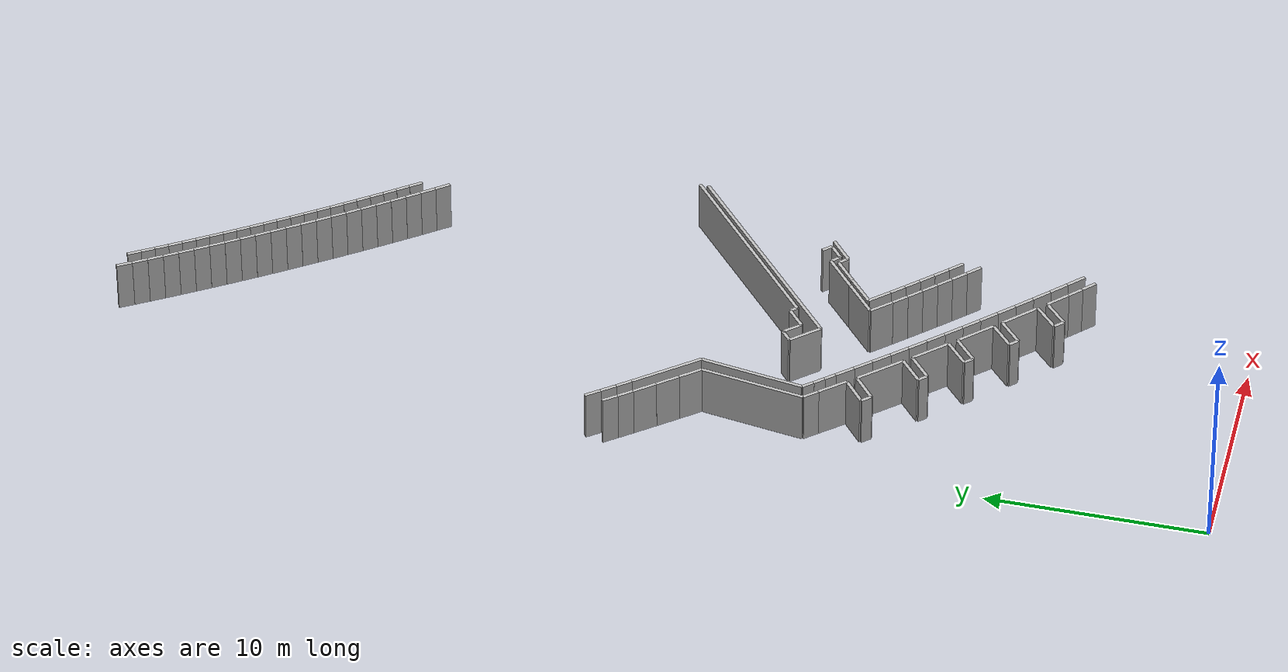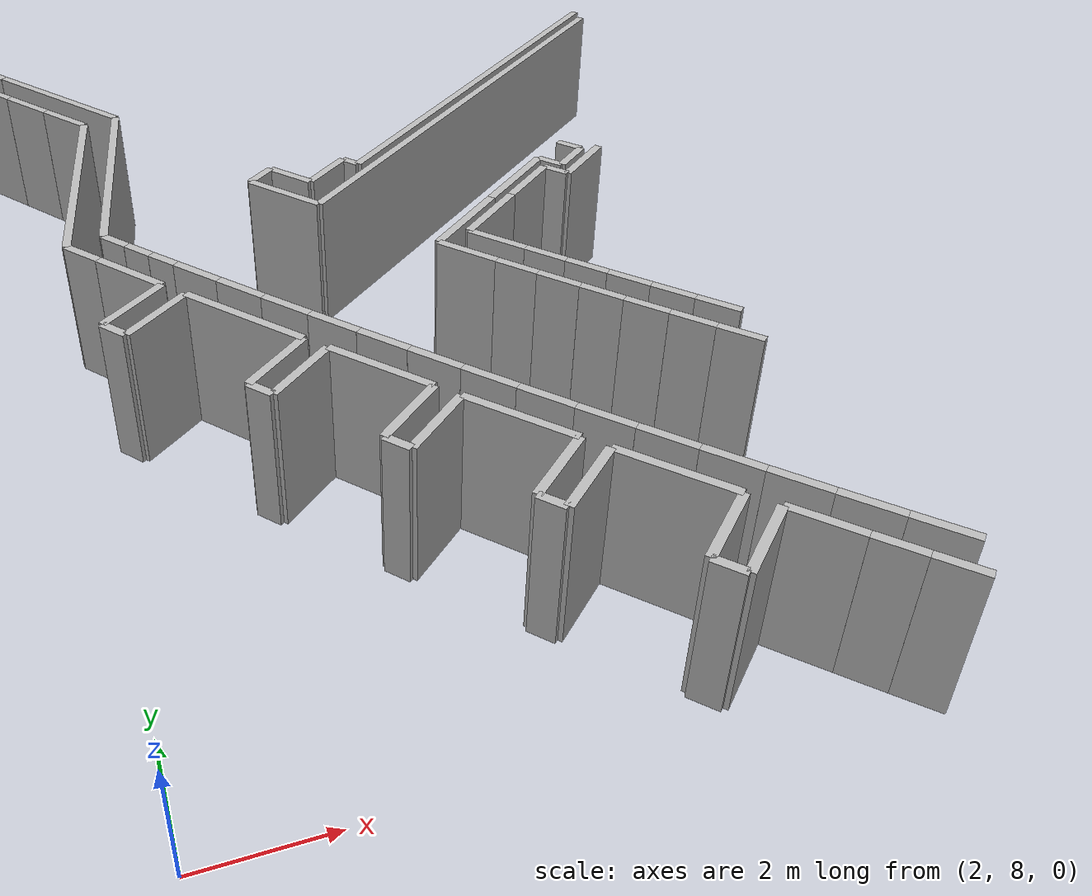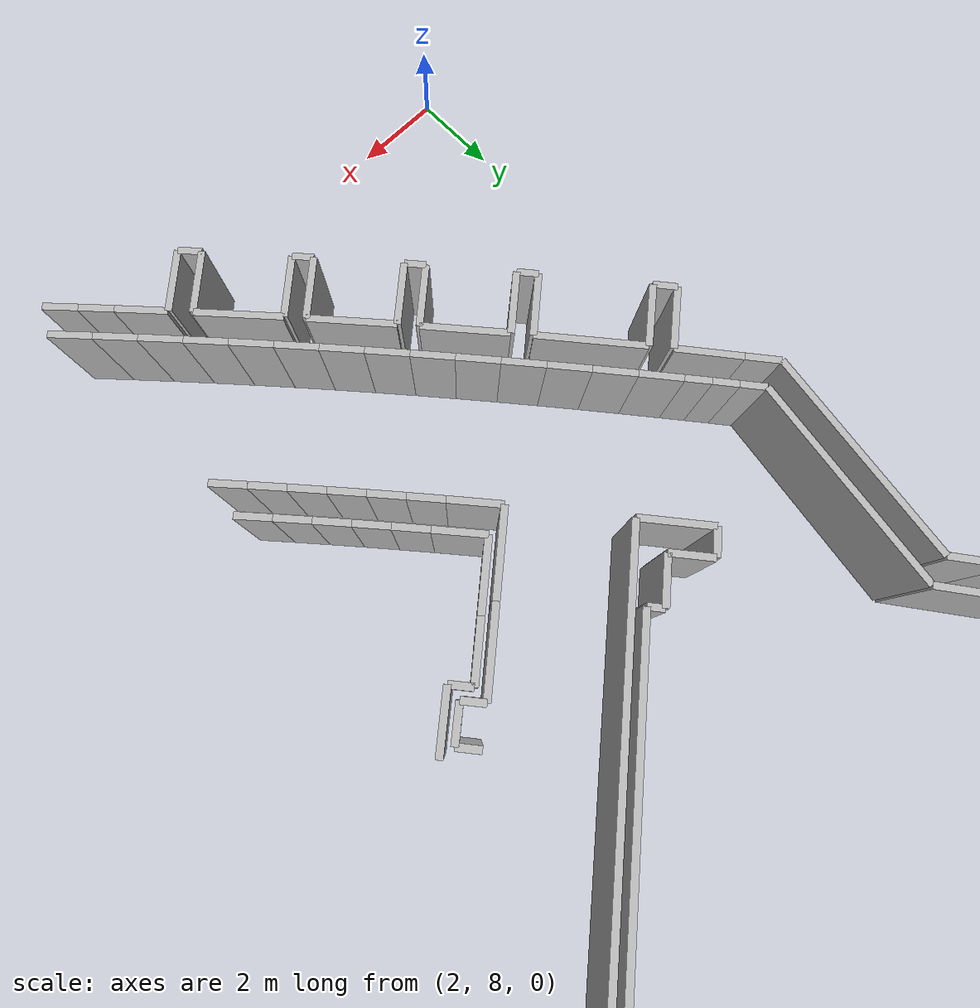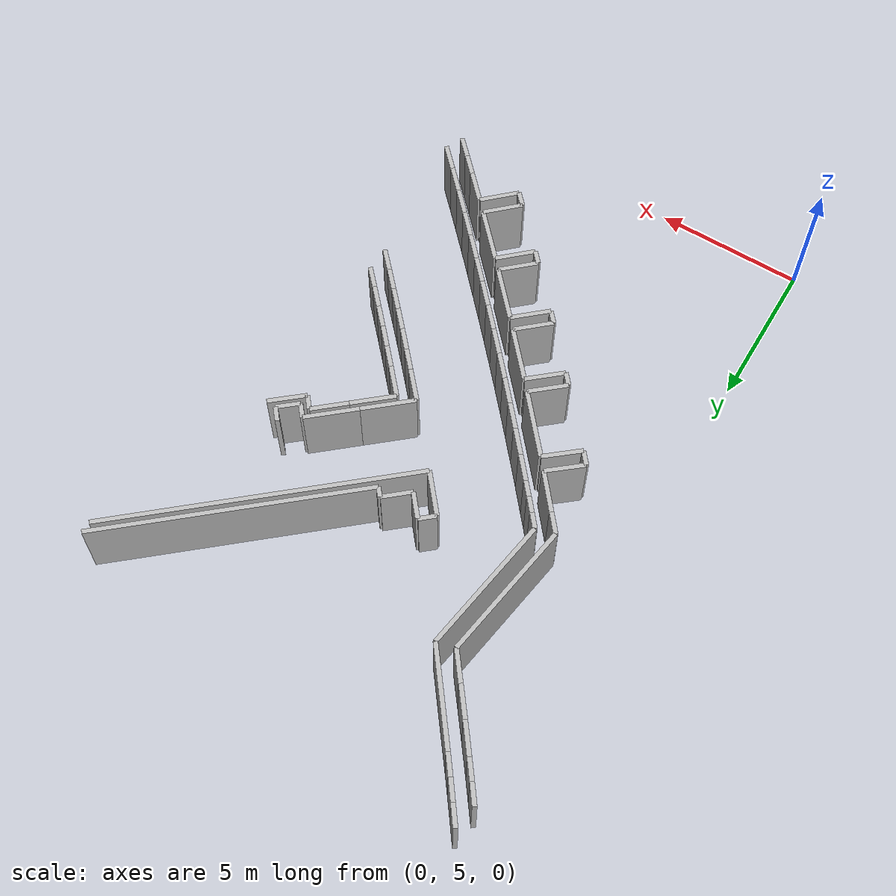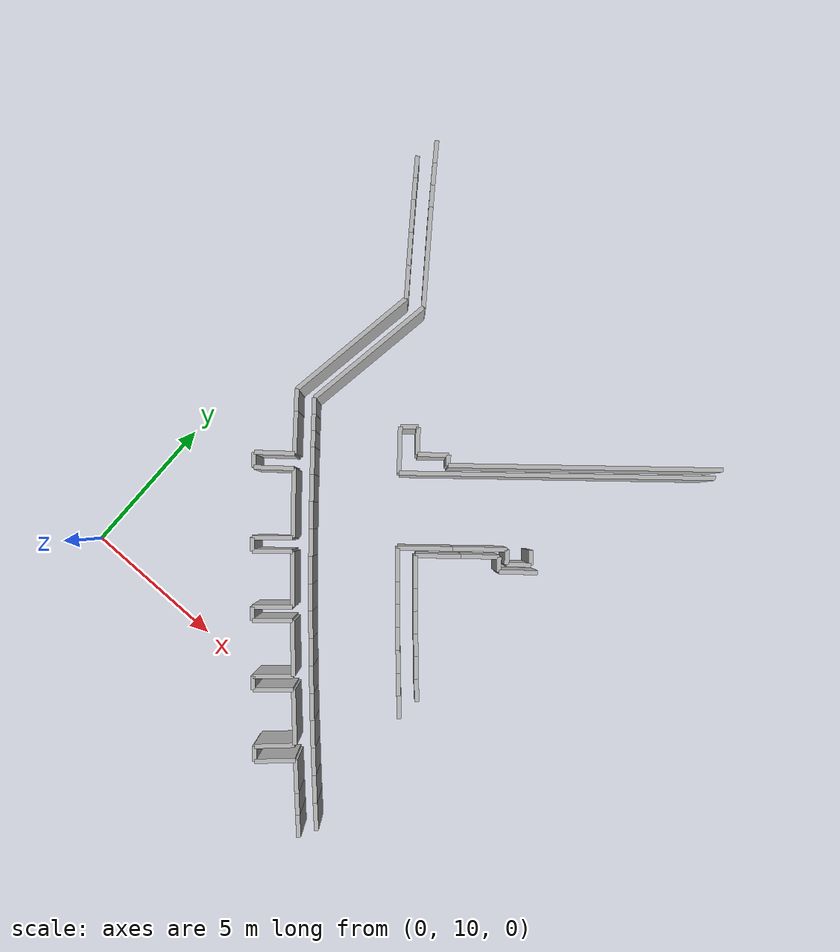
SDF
<sdf version="1.6">
 <model name="sps_0201">
  <static>1</static>
  <allow_auto_disable>0</allow_auto_disable>
  <link name="Wall22">
   <collision name="collision"><geometry><box><size>1.04001 0.15 2.5</size></box></geometry></collision>
   <visual name="visual">
    <geometry><box><size>1.04001 0.15 2.5</size></box></geometry>
    <transparency>0.0</transparency>
   </visual>
   <pose>6.87545 19.8261 1.25 0 -0 0.704597</pose>
  </link>
  <link name="Wall23">
   <collision name="collision"><geometry><box><size>1.85082 0.15 2.5</size></box></geometry></collision>
   <visual name="visual">
    <geometry><box><size>1.85082 0.15 2.5</size></box></geometry>
    <transparency>0.0</transparency>
   </visual>
   <pose>7.62777 11.8847 1.25 0 0 -0.835297</pose>
  </link>
  <link name="Wall24">
   <collision name="collision"><geometry><box><size>1.82676 0.15 2.5</size></box></geometry></collision>
   <visual name="visual">
    <geometry><box><size>1.82676 0.15 2.5</size></box></geometry>
    <transparency>0.0</transparency>
   </visual>
   <pose>8.73775 17.3015 1.25 0 -0 0.704541</pose>
  </link>
  <link name="Wall25">
   <collision name="collision"><geometry><box><size>1.82281 0.15 2.5</size></box></geometry></collision>
   <visual name="visual">
    <geometry><box><size>1.82281 0.15 2.5</size></box></geometry>
    <transparency>0.0</transparency>
   </visual>
   <pose>10.1281 18.4834 1.25 0 -0 0.704541</pose>
  </link>
  <link name="Wall26">
   <collision name="collision"><geometry><box><size>0.491822 0.15 2.5</size></box></geometry></collision>
   <visual name="visual">
    <geometry><box><size>0.491822 0.15 2.5</size></box></geometry>
    <transparency>0.0</transparency>
   </visual>
   <pose>10.9502 18.5315 1.25 0 0 -0.874056</pose>
  </link>
  <link name="Wall27">
   <collision name="collision"><geometry><box><size>0.800107 0.15 2.5</size></box></geometry></collision>
   <visual name="visual">
    <geometry><box><size>0.800107 0.15 2.5</size></box></geometry>
    <transparency>0.0</transparency>
   </visual>
   <pose>11.4463 18.9518 1.25 0 -0 0.696711</pose>
  </link>
  <link name="Wall29">
   <collision name="collision"><geometry><box><size>10.5653 0.15 2.5</size></box></geometry></collision>
   <visual name="visual">
    <geometry><box><size>10.5653 0.15 2.5</size></box></geometry>
    <transparency>0.0</transparency>
   </visual>
   <pose>10.4505 22.0385 1.25 0 -0 0.704572</pose>
  </link>
  <link name="Wall402">
   <collision name="collision"><geometry><box><size>1.34944 0.15 2.5</size></box></geometry></collision>
   <visual name="visual">
    <geometry><box><size>1.34944 0.15 2.5</size></box></geometry>
    <transparency>0.0</transparency>
   </visual>
   <pose>2.85216 16.3712 1.25 0 -0 0.687343</pose>
  </link>
  <link name="Wall403">
   <collision name="collision"><geometry><box><size>4.7322 0.15 2.5</size></box></geometry></collision>
   <visual name="visual">
    <geometry><box><size>4.7322 0.15 2.5</size></box></geometry>
    <transparency>0.0</transparency>
   </visual>
   <pose>3.01336 20.9779 1.25 0 0 -1.72778</pose>
  </link>
  <link name="Wall406">
   <collision name="collision"><geometry><box><size>1.35051 0.15 2.5</size></box></geometry></collision>
   <visual name="visual">
    <geometry><box><size>1.35051 0.15 2.5</size></box></geometry>
    <transparency>0.0</transparency>
   </visual>
   <pose>4.68355 14.2057 1.25 0 -0 0.705004</pose>
  </link>
  <link name="Wall407">
   <collision name="collision"><geometry><box><size>1.85036 0.15 2.5</size></box></geometry></collision>
   <visual name="visual">
    <geometry><box><size>1.85036 0.15 2.5</size></box></geometry>
    <transparency>0.0</transparency>
   </visual>
   <pose>6.10006 13.6048 1.25 0 0 -0.849748</pose>
  </link>
  <link name="Wall408">
   <collision name="collision"><geometry><box><size>0.349616 0.15 2.5</size></box></geometry></collision>
   <visual name="visual">
    <geometry><box><size>0.349616 0.15 2.5</size></box></geometry>
    <transparency>0.0</transparency>
   </visual>
   <pose>7.38363 20.0287 1.25 0 -0 2.26621</pose>
  </link>
  <link name="Wall409">
   <collision name="collision"><geometry><box><size>0.499879 0.15 2.5</size></box></geometry></collision>
   <visual name="visual">
    <geometry><box><size>0.499879 0.15 2.5</size></box></geometry>
    <transparency>0.0</transparency>
   </visual>
   <pose>11.5927 19.4002 1.25 0 0 -0.87401</pose>
  </link>
  <link name="Wall754">
   <collision name="collision"><geometry><box><size>1.34944 0.15 2.5</size></box></geometry></collision>
   <visual name="visual">
    <geometry><box><size>1.34944 0.15 2.5</size></box></geometry>
    <transparency>0.0</transparency>
   </visual>
   <pose>4.97536 13.8625 1.25 0 0 -2.43669</pose>
  </link>
  <link name="Wall1138">
   <collision name="collision"><geometry><box><size>0.4504 0.15 2.5</size></box></geometry></collision>
   <visual name="visual">
    <geometry><box><size>0.4504 0.15 2.5</size></box></geometry>
    <transparency>0.0</transparency>
   </visual>
   <pose>4.31536 13.5967 1.25 0 0 -0.864919</pose>
  </link>
  <link name="Wall1139">
   <collision name="collision"><geometry><box><size>1.34995 0.15 2.5</size></box></geometry></collision>
   <visual name="visual">
    <geometry><box><size>1.34995 0.15 2.5</size></box></geometry>
    <transparency>0.0</transparency>
   </visual>
   <pose>8.04855 10.4127 1.25 0 0 -2.40743</pose>
  </link>
  <link name="Wall1142">
   <collision name="collision"><geometry><box><size>0.500155 0.15 2.5</size></box></geometry></collision>
   <visual name="visual">
    <geometry><box><size>0.500155 0.15 2.5</size></box></geometry>
    <transparency>0.0</transparency>
   </visual>
   <pose>8.99227 8.40669 1.25 0 0 -0.824411</pose>
  </link>
  <link name="Wall1143">
   <collision name="collision"><geometry><box><size>1.0981 0.15 2.5</size></box></geometry></collision>
   <visual name="visual">
    <geometry><box><size>1.0981 0.15 2.5</size></box></geometry>
    <transparency>0.0</transparency>
   </visual>
   <pose>9.02373 16.4959 1.25 0 0 -0.852578</pose>
  </link>
  <link name="Wall1146">
   <collision name="collision"><geometry><box><size>1.85212 0.15 2.5</size></box></geometry></collision>
   <visual name="visual">
    <geometry><box><size>1.85212 0.15 2.5</size></box></geometry>
    <transparency>0.0</transparency>
   </visual>
   <pose>9.18056 10.187 1.25 0 0 -0.821268</pose>
  </link>
  <link name="Wall1147">
   <collision name="collision"><geometry><box><size>1.51884 0.15 2.5</size></box></geometry></collision>
   <visual name="visual">
    <geometry><box><size>1.51884 0.15 2.5</size></box></geometry>
    <transparency>0.0</transparency>
   </visual>
   <pose>9.24103 17.4012 1.25 0 -0 0.704572</pose>
  </link>
  <link name="Wall1148">
   <collision name="collision"><geometry><box><size>1.27685 0.15 2.5</size></box></geometry></collision>
   <visual name="visual">
    <geometry><box><size>1.27685 0.15 2.5</size></box></geometry>
    <transparency>0.0</transparency>
   </visual>
   <pose>10.306 18.3066 1.25 0 -0 0.704572</pose>
  </link>
  <link name="Wall1468">
   <collision name="collision"><geometry><box><size>4.75175 0.15 2.5</size></box></geometry></collision>
   <visual name="visual">
    <geometry><box><size>4.75175 0.15 2.5</size></box></geometry>
    <transparency>0.0</transparency>
   </visual>
   <pose>2.38036 20.816 1.25 0 0 -1.72772</pose>
  </link>
  <link name="Wall1470">
   <collision name="collision"><geometry><box><size>1.3495 0.15 2.5</size></box></geometry></collision>
   <visual name="visual">
    <geometry><box><size>1.3495 0.15 2.5</size></box></geometry>
    <transparency>0.0</transparency>
   </visual>
   <pose>3.17013 15.9857 1.25 0 0 -2.4537</pose>
  </link>
  <link name="Wall1471">
   <collision name="collision"><geometry><box><size>0.450705 0.15 2.5</size></box></geometry></collision>
   <visual name="visual">
    <geometry><box><size>0.450705 0.15 2.5</size></box></geometry>
    <transparency>0.0</transparency>
   </visual>
   <pose>7.39626 10.1276 1.25 0 0 -0.835404</pose>
  </link>
  <link name="Wall1472">
   <collision name="collision"><geometry><box><size>1.35059 0.15 2.5</size></box></geometry></collision>
   <visual name="visual">
    <geometry><box><size>1.35059 0.15 2.5</size></box></geometry>
    <transparency>0.0</transparency>
   </visual>
   <pose>7.74688 10.7466 1.25 0 -0 0.733127</pose>
  </link>
  <link name="Wall1473">
   <collision name="collision"><geometry><box><size>1.34996 0.15 2.5</size></box></geometry></collision>
   <visual name="visual">
    <geometry><box><size>1.34996 0.15 2.5</size></box></geometry>
    <transparency>0.0</transparency>
   </visual>
   <pose>9.31698 9.0497 1.25 0 -0 0.748624</pose>
  </link>
  <link name="Wall1474">
   <collision name="collision"><geometry><box><size>0.500044 0.15 2.5</size></box></geometry></collision>
   <visual name="visual">
    <geometry><box><size>0.500044 0.15 2.5</size></box></geometry>
    <transparency>0.0</transparency>
   </visual>
   <pose>10.9789 18.8868 1.25 0 0 -0.873808</pose>
  </link>
  <link name="Wall1764">
   <collision name="collision"><geometry><box><size>0.914482 0.15 2.5</size></box></geometry></collision>
   <visual name="visual">
    <geometry><box><size>0.914482 0.15 2.5</size></box></geometry>
    <transparency>0.0</transparency>
   </visual>
   <pose>6.18636 19.8404 1.25 0 -0 2.26607</pose>
  </link>
  <link name="Wall1765">
   <collision name="collision"><geometry><box><size>1.34981 0.15 2.5</size></box></geometry></collision>
   <visual name="visual">
    <geometry><box><size>1.34981 0.15 2.5</size></box></geometry>
    <transparency>0.0</transparency>
   </visual>
   <pose>6.20324 12.4651 1.25 0 -0 0.719549</pose>
  </link>
  <link name="Wall1770">
   <collision name="collision"><geometry><box><size>9.17421 0.15 2.5</size></box></geometry></collision>
   <visual name="visual">
    <geometry><box><size>9.17421 0.15 2.5</size></box></geometry>
    <transparency>0.0</transparency>
   </visual>
   <pose>10.9907 22.8654 1.25 0 -0 0.704518</pose>
  </link>
  <link name="Wall2098">
   <collision name="collision"><geometry><box><size>2.32488 0.15 2.5</size></box></geometry></collision>
   <visual name="visual">
    <geometry><box><size>2.32488 0.15 2.5</size></box></geometry>
    <transparency>0.0</transparency>
   </visual>
   <pose>4.44463 15.5287 1.25 0 0 -0.865903</pose>
  </link>
  <link name="Wall2099">
   <collision name="collision"><geometry><box><size>0.600053 0.15 2.5</size></box></geometry></collision>
   <visual name="visual">
    <geometry><box><size>0.600053 0.15 2.5</size></box></geometry>
    <transparency>0.0</transparency>
   </visual>
   <pose>5.66125 20.0016 1.25 0 -0 0.704467</pose>
  </link>
  <link name="Wall2100">
   <collision name="collision"><geometry><box><size>0.449065 0.15 2.5</size></box></geometry></collision>
   <visual name="visual">
    <geometry><box><size>0.449065 0.15 2.5</size></box></geometry>
    <transparency>0.0</transparency>
   </visual>
   <pose>5.84325 11.8511 1.25 0 0 -0.853398</pose>
  </link>
  <link name="Wall2101">
   <collision name="collision"><geometry><box><size>1.5502 0.15 2.5</size></box></geometry></collision>
   <visual name="visual">
    <geometry><box><size>1.5502 0.15 2.5</size></box></geometry>
    <transparency>0.0</transparency>
   </visual>
   <pose>5.92916 19.2121 1.25 0 -0 2.26606</pose>
  </link>
  <link name="Wall2102">
   <collision name="collision"><geometry><box><size>1.35001 0.15 2.5</size></box></geometry></collision>
   <visual name="visual">
    <geometry><box><size>1.35001 0.15 2.5</size></box></geometry>
    <transparency>0.0</transparency>
   </visual>
   <pose>6.49886 12.1264 1.25 0 0 -2.42277</pose>
  </link>
  <link name="Wall2104">
   <collision name="collision"><geometry><box><size>1.30009 0.15 2.5</size></box></geometry></collision>
   <visual name="visual">
    <geometry><box><size>1.30009 0.15 2.5</size></box></geometry>
    <transparency>0.0</transparency>
   </visual>
   <pose>11.6067 18.76 1.25 0 -0 0.696614</pose>
  </link>
  <link name="Wall2478">
   <collision name="collision"><geometry><box><size>0.50008 0.15 2.5</size></box></geometry></collision>
   <visual name="visual">
    <geometry><box><size>0.50008 0.15 2.5</size></box></geometry>
    <transparency>0.0</transparency>
   </visual>
   <pose>2.48974 15.7502 1.25 0 0 -0.881168</pose>
  </link>
  <link name="Wall2479">
   <collision name="collision"><geometry><box><size>0.74414 0.15 2.5</size></box></geometry></collision>
   <visual name="visual">
    <geometry><box><size>0.74414 0.15 2.5</size></box></geometry>
    <transparency>0.0</transparency>
   </visual>
   <pose>2.24448 18.1812 1.25 0 0 -0.885704</pose>
  </link>
  <link name="Wall2480">
   <collision name="collision"><geometry><box><size>1.41253 0.15 2.5</size></box></geometry></collision>
   <visual name="visual">
    <geometry><box><size>1.41253 0.15 2.5</size></box></geometry>
    <transparency>0.0</transparency>
   </visual>
   <pose>2.92679 17.3462 1.25 0 0 -0.885704</pose>
  </link>
  <link name="Wall2481">
   <collision name="collision"><geometry><box><size>1.35039 0.15 2.5</size></box></geometry></collision>
   <visual name="visual">
    <geometry><box><size>1.35039 0.15 2.5</size></box></geometry>
    <transparency>0.0</transparency>
   </visual>
   <pose>9.65716 8.6822 1.25 0 0 -2.39388</pose>
  </link>
  <link name="Wall6499">
   <collision name="collision"><geometry><box><size>1.09956 0.15 2.5</size></box></geometry></collision>
   <visual name="visual">
    <geometry><box><size>1.09956 0.15 2.5</size></box></geometry>
    <transparency>0.0</transparency>
   </visual>
   <pose>10.5354 8.74699 1.25 0 0 -0.810875</pose>
  </link>
  <link name="Wall6500">
   <collision name="collision"><geometry><box><size>0.732971 0.15 2.5</size></box></geometry></collision>
   <visual name="visual">
    <geometry><box><size>0.732971 0.15 2.5</size></box></geometry>
    <transparency>0.0</transparency>
   </visual>
   <pose>11.1681 8.08427 1.25 0 0 -0.805066</pose>
  </link>
  <link name="Wall6501">
   <collision name="collision"><geometry><box><size>0.733048 0.15 2.5</size></box></geometry></collision>
   <visual name="visual">
    <geometry><box><size>0.733048 0.15 2.5</size></box></geometry>
    <transparency>0.0</transparency>
   </visual>
   <pose>11.6772 7.5569 1.25 0 0 -0.801001</pose>
  </link>
  <link name="Wall12745">
   <collision name="collision"><geometry><box><size>0.712393 0.15 2.5</size></box></geometry></collision>
   <visual name="visual">
    <geometry><box><size>0.712393 0.15 2.5</size></box></geometry>
    <transparency>0.0</transparency>
   </visual>
   <pose>3.76525 49.7069 1.25 0 0 -1.05459</pose>
  </link>
  <link name="Wall12746">
   <collision name="collision"><geometry><box><size>0.712179 0.15 2.5</size></box></geometry></collision>
   <visual name="visual">
    <geometry><box><size>0.712179 0.15 2.5</size></box></geometry>
    <transparency>0.0</transparency>
   </visual>
   <pose>4.11837 49.0883 1.25 0 0 -1.04959</pose>
  </link>
  <link name="Wall12747">
   <collision name="collision"><geometry><box><size>0.712392 0.15 2.5</size></box></geometry></collision>
   <visual name="visual">
    <geometry><box><size>0.712392 0.15 2.5</size></box></geometry>
    <transparency>0.0</transparency>
   </visual>
   <pose>4.47457 48.4715 1.25 0 0 -1.04462</pose>
  </link>
  <link name="Wall12748">
   <collision name="collision"><geometry><box><size>0.712319 0.15 2.5</size></box></geometry></collision>
   <visual name="visual">
    <geometry><box><size>0.712319 0.15 2.5</size></box></geometry>
    <transparency>0.0</transparency>
   </visual>
   <pose>4.83385 47.8564 1.25 0 0 -1.03969</pose>
  </link>
  <link name="Wall12749">
   <collision name="collision"><geometry><box><size>0.712231 0.15 2.5</size></box></geometry></collision>
   <visual name="visual">
    <geometry><box><size>0.712231 0.15 2.5</size></box></geometry>
    <transparency>0.0</transparency>
   </visual>
   <pose>5.19625 47.2432 1.25 0 0 -1.03434</pose>
  </link>
  <link name="Wall12750">
   <collision name="collision"><geometry><box><size>0.712404 0.15 2.5</size></box></geometry></collision>
   <visual name="visual">
    <geometry><box><size>0.712404 0.15 2.5</size></box></geometry>
    <transparency>0.0</transparency>
   </visual>
   <pose>5.56176 46.6318 1.25 0 0 -1.0296</pose>
  </link>
  <link name="Wall12751">
   <collision name="collision"><geometry><box><size>0.712436 0.15 2.5</size></box></geometry></collision>
   <visual name="visual">
    <geometry><box><size>0.712436 0.15 2.5</size></box></geometry>
    <transparency>0.0</transparency>
   </visual>
   <pose>5.93026 46.0221 1.25 0 0 -1.02472</pose>
  </link>
  <link name="Wall12752">
   <collision name="collision"><geometry><box><size>0.712321 0.15 2.5</size></box></geometry></collision>
   <visual name="visual">
    <geometry><box><size>0.712321 0.15 2.5</size></box></geometry>
    <transparency>0.0</transparency>
   </visual>
   <pose>6.30184 45.4143 1.25 0 0 -1.0194</pose>
  </link>
  <link name="Wall12753">
   <collision name="collision"><geometry><box><size>0.712473 0.15 2.5</size></box></geometry></collision>
   <visual name="visual">
    <geometry><box><size>0.712473 0.15 2.5</size></box></geometry>
    <transparency>0.0</transparency>
   </visual>
   <pose>6.67654 44.8084 1.25 0 0 -1.01449</pose>
  </link>
  <link name="Wall12754">
   <collision name="collision"><geometry><box><size>0.712201 0.15 2.5</size></box></geometry></collision>
   <visual name="visual">
    <geometry><box><size>0.712201 0.15 2.5</size></box></geometry>
    <transparency>0.0</transparency>
   </visual>
   <pose>7.05416 44.2044 1.25 0 0 -1.00961</pose>
  </link>
  <link name="Wall12755">
   <collision name="collision"><geometry><box><size>0.71227 0.15 2.5</size></box></geometry></collision>
   <visual name="visual">
    <geometry><box><size>0.71227 0.15 2.5</size></box></geometry>
    <transparency>0.0</transparency>
   </visual>
   <pose>7.43465 43.6023 1.25 0 0 -1.0048</pose>
  </link>
  <link name="Wall12756">
   <collision name="collision"><geometry><box><size>0.712062 0.15 2.5</size></box></geometry></collision>
   <visual name="visual">
    <geometry><box><size>0.712062 0.15 2.5</size></box></geometry>
    <transparency>0.0</transparency>
   </visual>
   <pose>7.81814 43.0022 1.25 0 0 -0.999531</pose>
  </link>
  <link name="Wall12757">
   <collision name="collision"><geometry><box><size>0.712352 0.15 2.5</size></box></geometry></collision>
   <visual name="visual">
    <geometry><box><size>0.712352 0.15 2.5</size></box></geometry>
    <transparency>0.0</transparency>
   </visual>
   <pose>8.20464 42.404 1.25 0 0 -0.994795</pose>
  </link>
  <link name="Wall12758">
   <collision name="collision"><geometry><box><size>0.712435 0.15 2.5</size></box></geometry></collision>
   <visual name="visual">
    <geometry><box><size>0.712435 0.15 2.5</size></box></geometry>
    <transparency>0.0</transparency>
   </visual>
   <pose>8.59426 41.8076 1.25 0 0 -0.989447</pose>
  </link>
  <link name="Wall12759">
   <collision name="collision"><geometry><box><size>0.71237 0.15 2.5</size></box></geometry></collision>
   <visual name="visual">
    <geometry><box><size>0.71237 0.15 2.5</size></box></geometry>
    <transparency>0.0</transparency>
   </visual>
   <pose>8.98696 41.2132 1.25 0 0 -0.984457</pose>
  </link>
  <link name="Wall12760">
   <collision name="collision"><geometry><box><size>0.712354 0.15 2.5</size></box></geometry></collision>
   <visual name="visual">
    <geometry><box><size>0.712354 0.15 2.5</size></box></geometry>
    <transparency>0.0</transparency>
   </visual>
   <pose>9.38244 40.6207 1.25 0 0 -0.980013</pose>
  </link>
  <link name="Wall12761">
   <collision name="collision"><geometry><box><size>0.712342 0.15 2.5</size></box></geometry></collision>
   <visual name="visual">
    <geometry><box><size>0.712342 0.15 2.5</size></box></geometry>
    <transparency>0.0</transparency>
   </visual>
   <pose>9.78084 40.0302 1.25 0 0 -0.974524</pose>
  </link>
  <link name="Wall12762">
   <collision name="collision"><geometry><box><size>0.712364 0.15 2.5</size></box></geometry></collision>
   <visual name="visual">
    <geometry><box><size>0.712364 0.15 2.5</size></box></geometry>
    <transparency>0.0</transparency>
   </visual>
   <pose>10.1824 39.4418 1.25 0 0 -0.969462</pose>
  </link>
  <link name="Wall12763">
   <collision name="collision"><geometry><box><size>0.712265 0.15 2.5</size></box></geometry></collision>
   <visual name="visual">
    <geometry><box><size>0.712265 0.15 2.5</size></box></geometry>
    <transparency>0.0</transparency>
   </visual>
   <pose>10.5868 38.8554 1.25 0 0 -0.964683</pose>
  </link>
  <link name="Wall12764">
   <collision name="collision"><geometry><box><size>0.712663 0.15 2.5</size></box></geometry></collision>
   <visual name="visual">
    <geometry><box><size>0.712663 0.15 2.5</size></box></geometry>
    <transparency>0.0</transparency>
   </visual>
   <pose>10.9941 38.2709 1.25 0 0 -0.959537</pose>
  </link>
  <link name="Wall12765">
   <collision name="collision"><geometry><box><size>0.712179 0.15 2.5</size></box></geometry></collision>
   <visual name="visual">
    <geometry><box><size>0.712179 0.15 2.5</size></box></geometry>
    <transparency>0.0</transparency>
   </visual>
   <pose>11.4044 37.6885 1.25 0 0 -0.954552</pose>
  </link>
  <link name="Wall12766">
   <collision name="collision"><geometry><box><size>0.712322 0.15 2.5</size></box></geometry></collision>
   <visual name="visual">
    <geometry><box><size>0.712322 0.15 2.5</size></box></geometry>
    <transparency>0.0</transparency>
   </visual>
   <pose>11.8176 37.1083 1.25 0 0 -0.949541</pose>
  </link>
  <link name="Wall18920">
   <collision name="collision"><geometry><box><size>0.745486 0.15 2.5</size></box></geometry></collision>
   <visual name="visual">
    <geometry><box><size>0.745486 0.15 2.5</size></box></geometry>
    <transparency>0.0</transparency>
   </visual>
   <pose>0.249259 27.5043 1.25 0 0 -0.942704</pose>
  </link>
  <link name="Wall18921">
   <collision name="collision"><geometry><box><size>0.745331 0.15 2.5</size></box></geometry></collision>
   <visual name="visual">
    <geometry><box><size>0.745331 0.15 2.5</size></box></geometry>
    <transparency>0.0</transparency>
   </visual>
   <pose>0.688682 26.9022 1.25 0 0 -0.93799</pose>
  </link>
  <link name="Wall18922">
   <collision name="collision"><geometry><box><size>0.745337 0.15 2.5</size></box></geometry></collision>
   <visual name="visual">
    <geometry><box><size>0.745337 0.15 2.5</size></box></geometry>
    <transparency>0.0</transparency>
   </visual>
   <pose>1.13097 26.3023 1.25 0 0 -0.933011</pose>
  </link>
  <link name="Wall18923">
   <collision name="collision"><geometry><box><size>3.36865 0.15 2.5</size></box></geometry></collision>
   <visual name="visual">
    <geometry><box><size>3.36865 0.15 2.5</size></box></geometry>
    <transparency>0.0</transparency>
   </visual>
   <pose>2.36806 24.6589 1.25 0 0 -0.923874</pose>
  </link>
  <link name="Wall18936">
   <collision name="collision"><geometry><box><size>0.630425 0.15 2.5</size></box></geometry></collision>
   <visual name="visual">
    <geometry><box><size>0.630425 0.15 2.5</size></box></geometry>
    <transparency>0.0</transparency>
   </visual>
   <pose>4.58935 49.4736 1.25 0 0 -1.05049</pose>
  </link>
  <link name="Wall18937">
   <collision name="collision"><geometry><box><size>0.630488 0.15 2.5</size></box></geometry></collision>
   <visual name="visual">
    <geometry><box><size>0.630488 0.15 2.5</size></box></geometry>
    <transparency>0.0</transparency>
   </visual>
   <pose>4.90404 48.9273 1.25 0 0 -1.04585</pose>
  </link>
  <link name="Wall18938">
   <collision name="collision"><geometry><box><size>0.630345 0.15 2.5</size></box></geometry></collision>
   <visual name="visual">
    <geometry><box><size>0.630345 0.15 2.5</size></box></geometry>
    <transparency>0.0</transparency>
   </visual>
   <pose>5.22124 48.3825 1.25 0 0 -1.04124</pose>
  </link>
  <link name="Wall18939">
   <collision name="collision"><geometry><box><size>0.630249 0.15 2.5</size></box></geometry></collision>
   <visual name="visual">
    <geometry><box><size>0.630249 0.15 2.5</size></box></geometry>
    <transparency>0.0</transparency>
   </visual>
   <pose>5.54076 47.8392 1.25 0 0 -1.0371</pose>
  </link>
  <link name="Wall18940">
   <collision name="collision"><geometry><box><size>0.630508 0.15 2.5</size></box></geometry></collision>
   <visual name="visual">
    <geometry><box><size>0.630508 0.15 2.5</size></box></geometry>
    <transparency>0.0</transparency>
   </visual>
   <pose>5.86266 47.2972 1.25 0 0 -1.03262</pose>
  </link>
  <link name="Wall18941">
   <collision name="collision"><geometry><box><size>0.630404 0.15 2.5</size></box></geometry></collision>
   <visual name="visual">
    <geometry><box><size>0.630404 0.15 2.5</size></box></geometry>
    <transparency>0.0</transparency>
   </visual>
   <pose>6.18706 46.7566 1.25 0 0 -1.028</pose>
  </link>
  <link name="Wall18942">
   <collision name="collision"><geometry><box><size>0.63031 0.15 2.5</size></box></geometry></collision>
   <visual name="visual">
    <geometry><box><size>0.63031 0.15 2.5</size></box></geometry>
    <transparency>0.0</transparency>
   </visual>
   <pose>6.51376 46.2175 1.25 0 0 -1.02395</pose>
  </link>
  <link name="Wall18943">
   <collision name="collision"><geometry><box><size>0.630567 0.15 2.5</size></box></geometry></collision>
   <visual name="visual">
    <geometry><box><size>0.630567 0.15 2.5</size></box></geometry>
    <transparency>0.0</transparency>
   </visual>
   <pose>6.84286 45.6798 1.25 0 0 -1.0192</pose>
  </link>
  <link name="Wall18944">
   <collision name="collision"><geometry><box><size>0.630385 0.15 2.5</size></box></geometry></collision>
   <visual name="visual">
    <geometry><box><size>0.630385 0.15 2.5</size></box></geometry>
    <transparency>0.0</transparency>
   </visual>
   <pose>7.17446 45.1436 1.25 0 0 -1.0147</pose>
  </link>
  <link name="Wall18945">
   <collision name="collision"><geometry><box><size>0.630488 0.15 2.5</size></box></geometry></collision>
   <visual name="visual">
    <geometry><box><size>0.630488 0.15 2.5</size></box></geometry>
    <transparency>0.0</transparency>
   </visual>
   <pose>7.50845 44.6089 1.25 0 0 -1.01024</pose>
  </link>
  <link name="Wall18946">
   <collision name="collision"><geometry><box><size>0.630111 0.15 2.5</size></box></geometry></collision>
   <visual name="visual">
    <geometry><box><size>0.630111 0.15 2.5</size></box></geometry>
    <transparency>0.0</transparency>
   </visual>
   <pose>7.84475 44.0758 1.25 0 0 -1.00574</pose>
  </link>
  <link name="Wall18947">
   <collision name="collision"><geometry><box><size>0.630412 0.15 2.5</size></box></geometry></collision>
   <visual name="visual">
    <geometry><box><size>0.630412 0.15 2.5</size></box></geometry>
    <transparency>0.0</transparency>
   </visual>
   <pose>8.18334 43.5442 1.25 0 0 -1.00156</pose>
  </link>
  <link name="Wall18948">
   <collision name="collision"><geometry><box><size>0.630398 0.15 2.5</size></box></geometry></collision>
   <visual name="visual">
    <geometry><box><size>0.630398 0.15 2.5</size></box></geometry>
    <transparency>0.0</transparency>
   </visual>
   <pose>8.52434 43.014 1.25 0 0 -0.996946</pose>
  </link>
  <link name="Wall18949">
   <collision name="collision"><geometry><box><size>0.630313 0.15 2.5</size></box></geometry></collision>
   <visual name="visual">
    <geometry><box><size>0.630313 0.15 2.5</size></box></geometry>
    <transparency>0.0</transparency>
   </visual>
   <pose>8.86776 42.4854 1.25 0 0 -0.992355</pose>
  </link>
  <link name="Wall18950">
   <collision name="collision"><geometry><box><size>0.630496 0.15 2.5</size></box></geometry></collision>
   <visual name="visual">
    <geometry><box><size>0.630496 0.15 2.5</size></box></geometry>
    <transparency>0.0</transparency>
   </visual>
   <pose>9.21355 41.9583 1.25 0 0 -0.988029</pose>
  </link>
  <link name="Wall18951">
   <collision name="collision"><geometry><box><size>0.630335 0.15 2.5</size></box></geometry></collision>
   <visual name="visual">
    <geometry><box><size>0.630335 0.15 2.5</size></box></geometry>
    <transparency>0.0</transparency>
   </visual>
   <pose>9.56164 41.4327 1.25 0 0 -0.98368</pose>
  </link>
  <link name="Wall18952">
   <collision name="collision"><geometry><box><size>0.630373 0.15 2.5</size></box></geometry></collision>
   <visual name="visual">
    <geometry><box><size>0.630373 0.15 2.5</size></box></geometry>
    <transparency>0.0</transparency>
   </visual>
   <pose>9.91204 40.9087 1.25 0 0 -0.979061</pose>
  </link>
  <link name="Wall18953">
   <collision name="collision"><geometry><box><size>0.630439 0.15 2.5</size></box></geometry></collision>
   <visual name="visual">
    <geometry><box><size>0.630439 0.15 2.5</size></box></geometry>
    <transparency>0.0</transparency>
   </visual>
   <pose>10.2648 40.3862 1.25 0 0 -0.974926</pose>
  </link>
  <link name="Wall18954">
   <collision name="collision"><geometry><box><size>0.630468 0.15 2.5</size></box></geometry></collision>
   <visual name="visual">
    <geometry><box><size>0.630468 0.15 2.5</size></box></geometry>
    <transparency>0.0</transparency>
   </visual>
   <pose>10.6198 39.8652 1.25 0 0 -0.970389</pose>
  </link>
  <link name="Wall18955">
   <collision name="collision"><geometry><box><size>0.63036 0.15 2.5</size></box></geometry></collision>
   <visual name="visual">
    <geometry><box><size>0.63036 0.15 2.5</size></box></geometry>
    <transparency>0.0</transparency>
   </visual>
   <pose>10.9772 39.3459 1.25 0 0 -0.965686</pose>
  </link>
  <link name="Wall18956">
   <collision name="collision"><geometry><box><size>0.63041 0.15 2.5</size></box></geometry></collision>
   <visual name="visual">
    <geometry><box><size>0.63041 0.15 2.5</size></box></geometry>
    <transparency>0.0</transparency>
   </visual>
   <pose>11.3368 38.8282 1.25 0 0 -0.961498</pose>
  </link>
  <link name="Wall18957">
   <collision name="collision"><geometry><box><size>0.630563 0.15 2.5</size></box></geometry></collision>
   <visual name="visual">
    <geometry><box><size>0.630563 0.15 2.5</size></box></geometry>
    <transparency>0.0</transparency>
   </visual>
   <pose>11.6988 38.312 1.25 0 0 -0.956938</pose>
  </link>
  <link name="Wall20920">
   <collision name="collision"><geometry><box><size>0.732826 0.15 2.5</size></box></geometry></collision>
   <visual name="visual">
    <geometry><box><size>0.732826 0.15 2.5</size></box></geometry>
    <transparency>0.0</transparency>
   </visual>
   <pose>0.0928262 26.6994 1.25 0 0 -0.939006</pose>
  </link>
  <link name="Wall20921">
   <collision name="collision"><geometry><box><size>0.733063 0.15 2.5</size></box></geometry></collision>
   <visual name="visual">
    <geometry><box><size>0.733063 0.15 2.5</size></box></geometry>
    <transparency>0.0</transparency>
   </visual>
   <pose>0.52703 26.1089 1.25 0 0 -0.934489</pose>
  </link>
  <link name="Wall20922">
   <collision name="collision"><geometry><box><size>1.1085 0.15 2.5</size></box></geometry></collision>
   <visual name="visual">
    <geometry><box><size>1.1085 0.15 2.5</size></box></geometry>
    <transparency>0.0</transparency>
   </visual>
   <pose>1.07723 25.3706 1.25 0 0 -0.927637</pose>
  </link>
  <link name="Wall20923">
   <collision name="collision"><geometry><box><size>1.10845 0.15 2.5</size></box></geometry></collision>
   <visual name="visual">
    <geometry><box><size>1.10845 0.15 2.5</size></box></geometry>
    <transparency>0.0</transparency>
   </visual>
   <pose>1.74413 24.4852 1.25 0 0 -0.922846</pose>
  </link>
  <link name="Wall20924">
   <collision name="collision"><geometry><box><size>1.10836 0.15 2.5</size></box></geometry></collision>
   <visual name="visual">
    <geometry><box><size>1.10836 0.15 2.5</size></box></geometry>
    <transparency>0.0</transparency>
   </visual>
   <pose>2.41515 23.603 1.25 0 0 -0.91822</pose>
  </link>
  <link name="Wall24507">
   <collision name="collision"><geometry><box><size>0.545886 0.15 2.5</size></box></geometry></collision>
   <visual name="visual">
    <geometry><box><size>0.545886 0.15 2.5</size></box></geometry>
    <transparency>0.0</transparency>
   </visual>
   <pose>2.81506 18.4241 1.25 0 0 -0.887167</pose>
  </link>
  <link name="Wall24508">
   <collision name="collision"><geometry><box><size>0.546017 0.15 2.5</size></box></geometry></collision>
   <visual name="visual">
    <geometry><box><size>0.546017 0.15 2.5</size></box></geometry>
    <transparency>0.0</transparency>
   </visual>
   <pose>3.16106 18.0018 1.25 0 0 -0.881583</pose>
  </link>
  <link name="Wall24509">
   <collision name="collision"><geometry><box><size>0.545806 0.15 2.5</size></box></geometry></collision>
   <visual name="visual">
    <geometry><box><size>0.545806 0.15 2.5</size></box></geometry>
    <transparency>0.0</transparency>
   </visual>
   <pose>3.50945 17.5815 1.25 0 0 -0.875743</pose>
  </link>
  <link name="Wall24510">
   <collision name="collision"><geometry><box><size>0.913857 0.15 2.5</size></box></geometry></collision>
   <visual name="visual">
    <geometry><box><size>0.913857 0.15 2.5</size></box></geometry>
    <transparency>0.0</transparency>
   </visual>
   <pose>3.97665 17.0208 1.25 0 0 -0.87634</pose>
  </link>
  <link name="Wall24511">
   <collision name="collision"><geometry><box><size>0.913767 0.15 2.5</size></box></geometry></collision>
   <visual name="visual">
    <geometry><box><size>0.913767 0.15 2.5</size></box></geometry>
    <transparency>0.0</transparency>
   </visual>
   <pose>4.56335 16.3202 1.25 0 0 -0.870944</pose>
  </link>
  <link name="Wall24512">
   <collision name="collision"><geometry><box><size>0.913709 0.15 2.5</size></box></geometry></collision>
   <visual name="visual">
    <geometry><box><size>0.913709 0.15 2.5</size></box></geometry>
    <transparency>0.0</transparency>
   </visual>
   <pose>5.15395 15.623 1.25 0 0 -0.865025</pose>
  </link>
  <link name="Wall24513">
   <collision name="collision"><geometry><box><size>0.913656 0.15 2.5</size></box></geometry></collision>
   <visual name="visual">
    <geometry><box><size>0.913656 0.15 2.5</size></box></geometry>
    <transparency>0.0</transparency>
   </visual>
   <pose>5.74856 14.9293 1.25 0 0 -0.859344</pose>
  </link>
  <link name="Wall24514">
   <collision name="collision"><geometry><box><size>0.913753 0.15 2.5</size></box></geometry></collision>
   <visual name="visual">
    <geometry><box><size>0.913753 0.15 2.5</size></box></geometry>
    <transparency>0.0</transparency>
   </visual>
   <pose>6.34716 14.239 1.25 0 0 -0.853512</pose>
  </link>
  <link name="Wall24515">
   <collision name="collision"><geometry><box><size>0.913518 0.15 2.5</size></box></geometry></collision>
   <visual name="visual">
    <geometry><box><size>0.913518 0.15 2.5</size></box></geometry>
    <transparency>0.0</transparency>
   </visual>
   <pose>6.94958 13.5521 1.25 0 0 -0.848132</pose>
  </link>
  <link name="Wall24516">
   <collision name="collision"><geometry><box><size>0.913801 0.15 2.5</size></box></geometry></collision>
   <visual name="visual">
    <geometry><box><size>0.913801 0.15 2.5</size></box></geometry>
    <transparency>0.0</transparency>
   </visual>
   <pose>7.55587 12.8686 1.25 0 0 -0.842246</pose>
  </link>
  <link name="Wall24517">
   <collision name="collision"><geometry><box><size>0.913739 0.15 2.5</size></box></geometry></collision>
   <visual name="visual">
    <geometry><box><size>0.913739 0.15 2.5</size></box></geometry>
    <transparency>0.0</transparency>
   </visual>
   <pose>8.16616 12.1885 1.25 0 0 -0.836621</pose>
  </link>
  <link name="Wall24518">
   <collision name="collision"><geometry><box><size>0.913702 0.15 2.5</size></box></geometry></collision>
   <visual name="visual">
    <geometry><box><size>0.913702 0.15 2.5</size></box></geometry>
    <transparency>0.0</transparency>
   </visual>
   <pose>8.78027 11.5119 1.25 0 0 -0.830901</pose>
  </link>
  <link name="Wall24519">
   <collision name="collision"><geometry><box><size>0.913747 0.15 2.5</size></box></geometry></collision>
   <visual name="visual">
    <geometry><box><size>0.913747 0.15 2.5</size></box></geometry>
    <transparency>0.0</transparency>
   </visual>
   <pose>9.39815 10.8388 1.25 0 0 -0.825415</pose>
  </link>
  <link name="Wall24520">
   <collision name="collision"><geometry><box><size>0.913679 0.15 2.5</size></box></geometry></collision>
   <visual name="visual">
    <geometry><box><size>0.913679 0.15 2.5</size></box></geometry>
    <transparency>0.0</transparency>
   </visual>
   <pose>10.0198 10.1692 1.25 0 0 -0.819604</pose>
  </link>
  <link name="Wall24521">
   <collision name="collision"><geometry><box><size>0.913813 0.15 2.5</size></box></geometry></collision>
   <visual name="visual">
    <geometry><box><size>0.913813 0.15 2.5</size></box></geometry>
    <transparency>0.0</transparency>
   </visual>
   <pose>10.6454 9.50319 1.25 0 0 -0.813692</pose>
  </link>
  <link name="Wall24522">
   <collision name="collision"><geometry><box><size>0.913683 0.15 2.5</size></box></geometry></collision>
   <visual name="visual">
    <geometry><box><size>0.913683 0.15 2.5</size></box></geometry>
    <transparency>0.0</transparency>
   </visual>
   <pose>11.2749 8.8408 1.25 0 0 -0.80812</pose>
  </link>
  <link name="Wall24523">
   <collision name="collision"><geometry><box><size>0.913714 0.15 2.5</size></box></geometry></collision>
   <visual name="visual">
    <geometry><box><size>0.913714 0.15 2.5</size></box></geometry>
    <transparency>0.0</transparency>
   </visual>
   <pose>11.9079 8.1819 1.25 0 0 -0.802781</pose>
  </link>
  <link name="Wall27423">
   <collision name="collision"><geometry><box><size>1.12388 0.15 2.5</size></box></geometry></collision>
   <visual name="visual">
    <geometry><box><size>1.12388 0.15 2.5</size></box></geometry>
    <transparency>0.0</transparency>
   </visual>
   <pose>8.41085 16.2861 1.25 0 0 -0.854383</pose>
  </link>
  <link name="Wall27424">
   <collision name="collision"><geometry><box><size>0.763679 0.15 2.5</size></box></geometry></collision>
   <visual name="visual">
    <geometry><box><size>0.763679 0.15 2.5</size></box></geometry>
    <transparency>0.0</transparency>
   </visual>
   <pose>9.03216 15.5757 1.25 0 0 -0.849019</pose>
  </link>
  <link name="Wall27425">
   <collision name="collision"><geometry><box><size>0.763528 0.15 2.5</size></box></geometry></collision>
   <visual name="visual">
    <geometry><box><size>0.763528 0.15 2.5</size></box></geometry>
    <transparency>0.0</transparency>
   </visual>
   <pose>9.53814 15.0038 1.25 0 0 -0.843935</pose>
  </link>
  <link name="Wall27426">
   <collision name="collision"><geometry><box><size>0.76341 0.15 2.5</size></box></geometry></collision>
   <visual name="visual">
    <geometry><box><size>0.76341 0.15 2.5</size></box></geometry>
    <transparency>0.0</transparency>
   </visual>
   <pose>10.0468 14.4345 1.25 0 0 -0.839188</pose>
  </link>
  <link name="Wall27427">
   <collision name="collision"><geometry><box><size>0.763737 0.15 2.5</size></box></geometry></collision>
   <visual name="visual">
    <geometry><box><size>0.763737 0.15 2.5</size></box></geometry>
    <transparency>0.0</transparency>
   </visual>
   <pose>10.5583 13.8676 1.25 0 0 -0.834298</pose>
  </link>
  <link name="Wall27428">
   <collision name="collision"><geometry><box><size>0.763306 0.15 2.5</size></box></geometry></collision>
   <visual name="visual">
    <geometry><box><size>0.763306 0.15 2.5</size></box></geometry>
    <transparency>0.0</transparency>
   </visual>
   <pose>11.0726 13.3032 1.25 0 0 -0.829458</pose>
  </link>
  <link name="Wall27429">
   <collision name="collision"><geometry><box><size>0.763548 0.15 2.5</size></box></geometry></collision>
   <visual name="visual">
    <geometry><box><size>0.763548 0.15 2.5</size></box></geometry>
    <transparency>0.0</transparency>
   </visual>
   <pose>11.5894 12.7413 1.25 0 0 -0.824862</pose>
  </link>
  <link name="Wall27493">
   <collision name="collision"><geometry><box><size>0.753521 0.15 2.5</size></box></geometry></collision>
   <visual name="visual">
    <geometry><box><size>0.753521 0.15 2.5</size></box></geometry>
    <transparency>0.0</transparency>
   </visual>
   <pose>9.63445 15.8001 1.25 0 0 -0.847295</pose>
  </link>
  <link name="Wall27494">
   <collision name="collision"><geometry><box><size>0.753609 0.15 2.5</size></box></geometry></collision>
   <visual name="visual">
    <geometry><box><size>0.753609 0.15 2.5</size></box></geometry>
    <transparency>0.0</transparency>
   </visual>
   <pose>10.1347 15.2365 1.25 0 0 -0.842526</pose>
  </link>
  <link name="Wall27495">
   <collision name="collision"><geometry><box><size>0.753679 0.15 2.5</size></box></geometry></collision>
   <visual name="visual">
    <geometry><box><size>0.753679 0.15 2.5</size></box></geometry>
    <transparency>0.0</transparency>
   </visual>
   <pose>10.6376 14.6752 1.25 0 0 -0.837933</pose>
  </link>
  <link name="Wall27496">
   <collision name="collision"><geometry><box><size>0.753497 0.15 2.5</size></box></geometry></collision>
   <visual name="visual">
    <geometry><box><size>0.753497 0.15 2.5</size></box></geometry>
    <transparency>0.0</transparency>
   </visual>
   <pose>11.1431 14.1163 1.25 0 0 -0.833128</pose>
  </link>
  <link name="Wall27497">
   <collision name="collision"><geometry><box><size>0.753464 0.15 2.5</size></box></geometry></collision>
   <visual name="visual">
    <geometry><box><size>0.753464 0.15 2.5</size></box></geometry>
    <transparency>0.0</transparency>
   </visual>
   <pose>11.6511 13.5599 1.25 0 0 -0.828371</pose>
  </link>
 </model>
</sdf>
